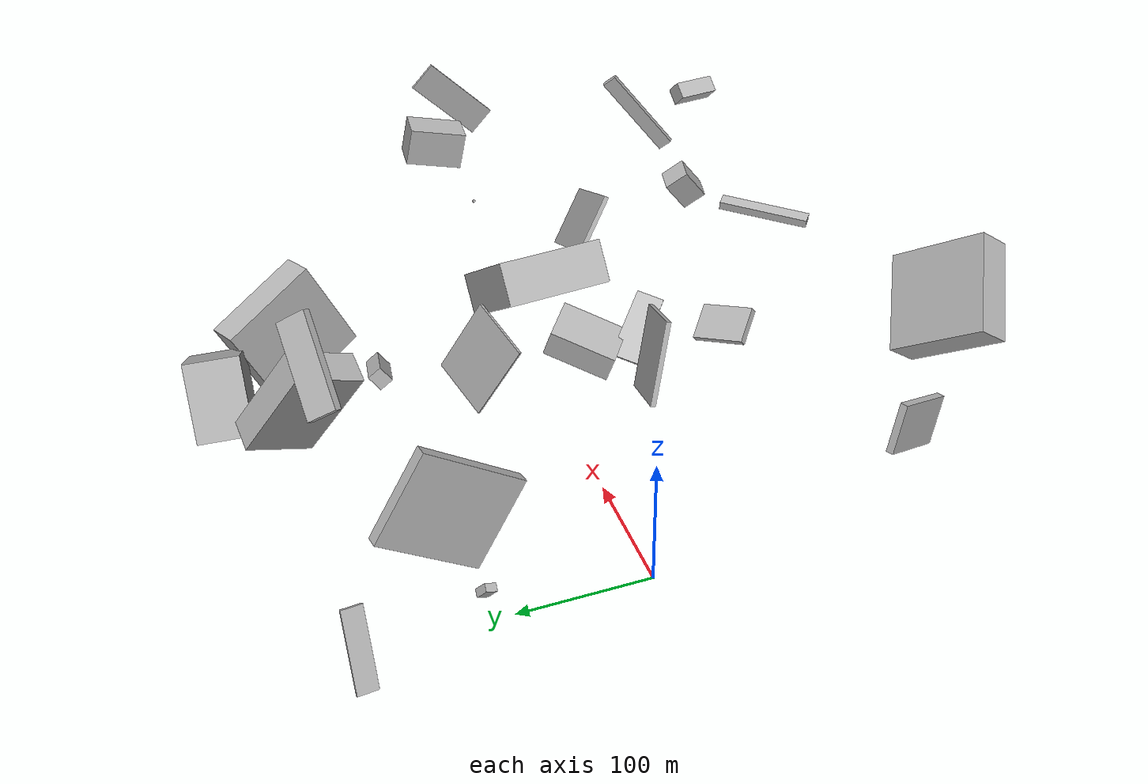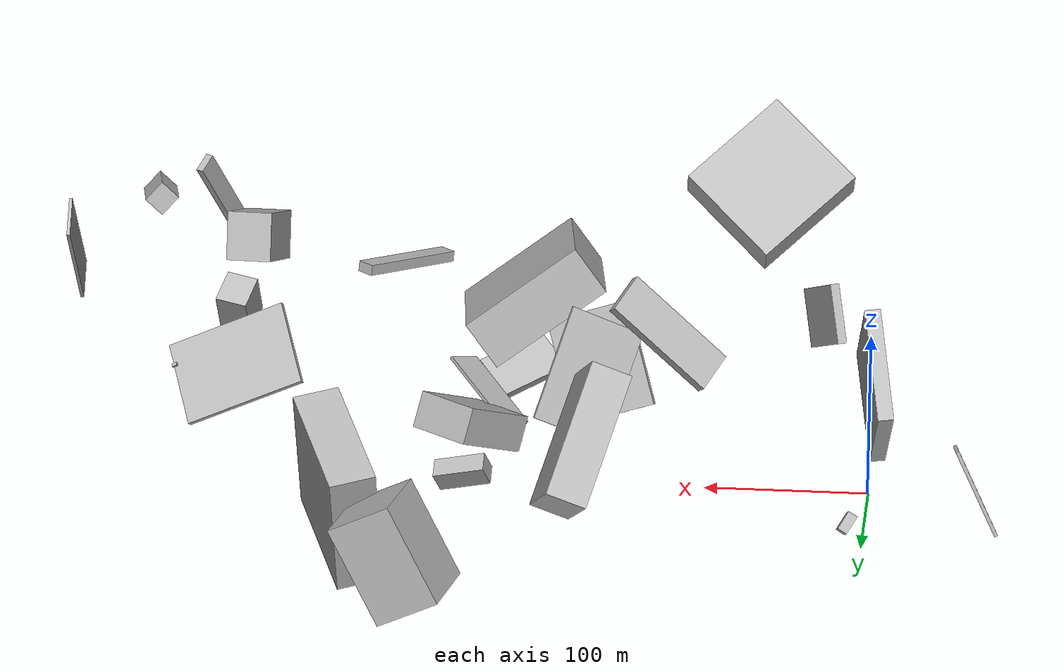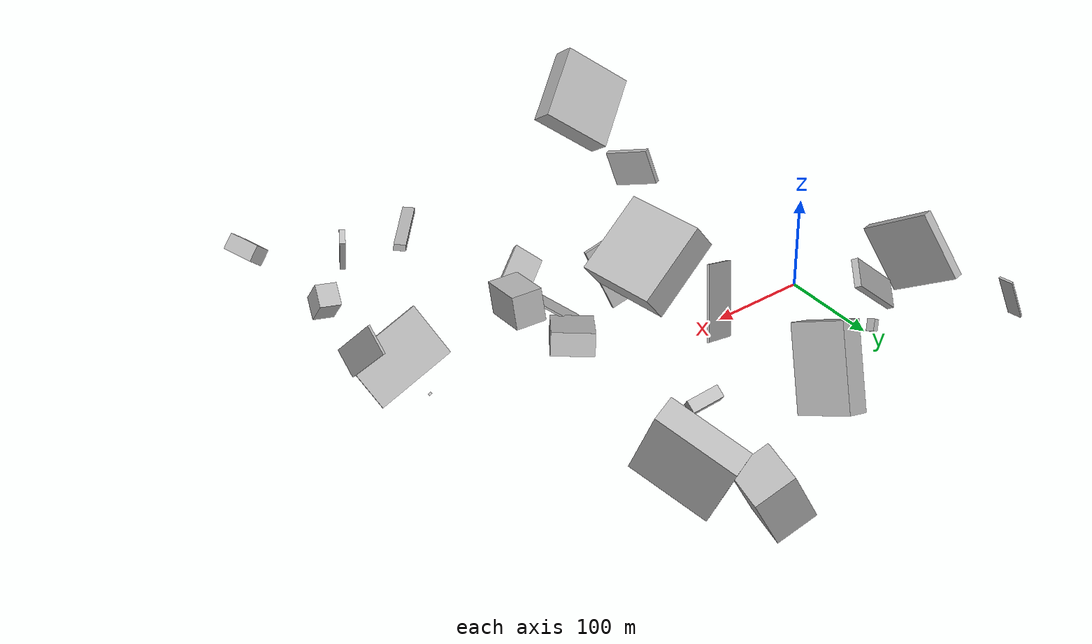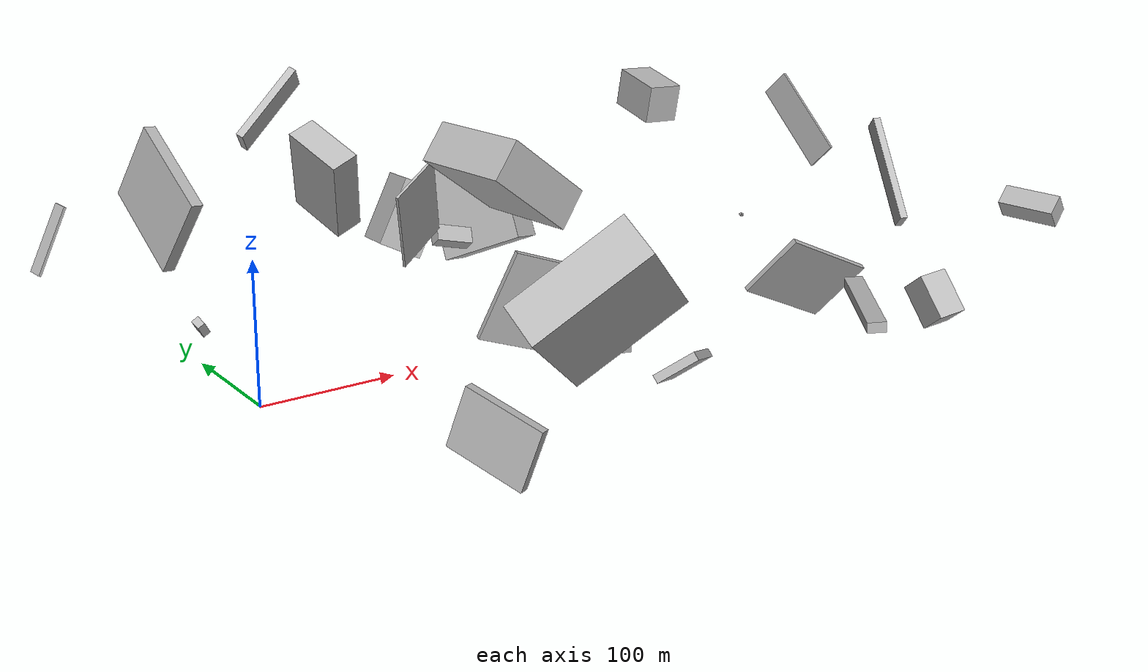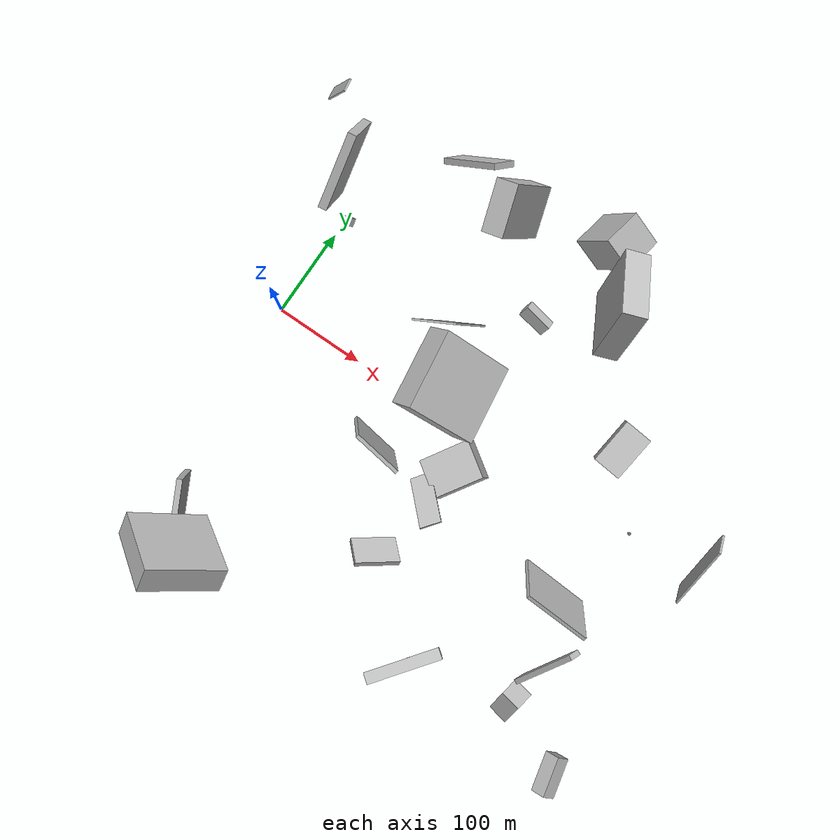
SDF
<sdf version="1.6">
 <world name="default">
  <scene>
   <sky><clouds><speed>12</speed></clouds></sky>
   <ambient>0.4 0.4 0.4 1</ambient>
   <background>0.7 0.7 0.7 1</background>
   <shadows>1</shadows>
  </scene>
  <gravity>0 0 -9.8066</gravity>
  <magnetic_field>6e-06 2.3e-05 -4.2e-05</magnetic_field>
  <physics default="0" name="default_physics" type="ode">
   <ode>
    <solver>
     <type>quick</type>
     <iters>10</iters>
     <sor>1.0</sor>
     <use_dynamic_moi_rescaling>0</use_dynamic_moi_rescaling>
    </solver>
    <constraints>
     <cfm>0</cfm>
     <erp>0.2</erp>
     <contact_max_correcting_vel>100</contact_max_correcting_vel>
     <contact_surface_layer>0.001</contact_surface_layer>
    </constraints>
   </ode>
   <max_step_size>0.004</max_step_size>
   <real_time_factor>1</real_time_factor>
   <real_time_update_rate>250</real_time_update_rate>
  </physics>
  <light name="sun" type="directional">
   <pose>0 0 10 0 0 0</pose>
   <diffuse>0.8 0.8 0.8 1</diffuse>
   <specular>0.2 0.2 0.2 1</specular>
   <attenuation>
    <range>1000</range>
    <constant>0.9</constant>
    <linear>0.01</linear>
    <quadratic>0.001</quadratic>
   </attenuation>
   <direction>-0.5 0.1 -0.9</direction>
  </light>
  <model name="building_1">
   <static>0</static>
   <pose>235.23964842096214 20.82194819237553 103.2047017219129 -0.9524782918289773 -0.026486039411375294 1.7036324238253693</pose>
   <link name="link">
    <gravity>0</gravity>
    <pose>0 0 40.0 0 0 0</pose>
    <collision name="collision"><geometry><box><size>80 32 80</size></box></geometry></collision>
    <visual name="visual">
     <cast_shadows>0</cast_shadows>
     <geometry><box><size>80 32 80</size></box></geometry>
     <material>
      <script>
       <uri>model://HANNAS_wall/materials/scripts</uri>
       <uri>model://HANNAS_wall/materials/textures</uri>
       <name>vrc/HANNAS_wall</name>
      </script>
     </material>
    </visual>
   </link>
  </model>
  <model name="building_2">
   <static>0</static>
   <pose>483.886964312198 -248.84995673003476 113.12028440746765 -1.4904453070580272 0.7961641236755025 0.2801724063317619</pose>
   <link name="link">
    <gravity>0</gravity>
    <pose>0 0 19.0 0 0 0</pose>
    <collision name="collision"><geometry><box><size>16 15 38</size></box></geometry></collision>
    <visual name="visual">
     <cast_shadows>0</cast_shadows>
     <geometry><box><size>16 15 38</size></box></geometry>
     <material>
      <script>
       <uri>model://HANNAS_wall/materials/scripts</uri>
       <uri>model://HANNAS_wall/materials/textures</uri>
       <name>vrc/HANNAS_wall</name>
      </script>
     </material>
    </visual>
   </link>
  </model>
  <model name="building_3">
   <static>0</static>
   <pose>365.5596434854917 51.87610842841268 151.6974452510726 0.21430864675087197 0.010999509659303365 -0.10493074831250365</pose>
   <link name="link">
    <gravity>0</gravity>
    <pose>0 0 14.5 0 0 0</pose>
    <collision name="collision"><geometry><box><size>27 44 29</size></box></geometry></collision>
    <visual name="visual">
     <cast_shadows>0</cast_shadows>
     <geometry><box><size>27 44 29</size></box></geometry>
     <material>
      <script>
       <uri>model://HANNAS_wall/materials/scripts</uri>
       <uri>model://HANNAS_wall/materials/textures</uri>
       <name>vrc/HANNAS_wall</name>
      </script>
     </material>
    </visual>
   </link>
  </model>
  <model name="building_4">
   <static>0</static>
   <pose>488.23084929335204 -8.391974068427652 149.21707968383095 2.3414672389962403 -0.01143662068264524 -3.058246632697735</pose>
   <link name="link">
    <gravity>0</gravity>
    <pose>0 0 13.0 0 0 0</pose>
    <collision name="collision"><geometry><box><size>2 76 26</size></box></geometry></collision>
    <visual name="visual">
     <cast_shadows>0</cast_shadows>
     <geometry><box><size>2 76 26</size></box></geometry>
     <material>
      <script>
       <uri>model://HANNAS_wall/materials/scripts</uri>
       <uri>model://HANNAS_wall/materials/textures</uri>
       <name>vrc/HANNAS_wall</name>
      </script>
     </material>
    </visual>
   </link>
  </model>
  <model name="building_5">
   <static>0</static>
   <pose>426.3080718156157 1.42758083488277 68.29221395530334 2.209118921637051 0.6918436585693996 2.02317017112855</pose>
   <link name="link">
    <gravity>0</gravity>
    <pose>0 0 1.5 0 0 0</pose>
    <collision name="collision"><geometry><box><size>2 2 3</size></box></geometry></collision>
    <visual name="visual">
     <cast_shadows>0</cast_shadows>
     <geometry><box><size>2 2 3</size></box></geometry>
     <material>
      <script>
       <uri>model://HANNAS_wall/materials/scripts</uri>
       <uri>model://HANNAS_wall/materials/textures</uri>
       <name>vrc/HANNAS_wall</name>
      </script>
     </material>
    </visual>
   </link>
  </model>
  <model name="building_6">
   <static>0</static>
   <pose>238.22375328539266 256.04236588549463 49.090786099963836 2.027785942264363 0.08540359595881124 1.3917862674086494</pose>
   <link name="link">
    <gravity>0</gravity>
    <pose>0 0 20.0 0 0 0</pose>
    <collision name="collision"><geometry><box><size>43 62 40</size></box></geometry></collision>
    <visual name="visual">
     <cast_shadows>0</cast_shadows>
     <geometry><box><size>43 62 40</size></box></geometry>
     <material>
      <script>
       <uri>model://HANNAS_wall/materials/scripts</uri>
       <uri>model://HANNAS_wall/materials/textures</uri>
       <name>vrc/HANNAS_wall</name>
      </script>
     </material>
    </visual>
   </link>
  </model>
  <model name="building_7">
   <static>0</static>
   <pose>148.2934812535727 228.7641384522192 106.31781913193907 -2.422140564726641 -0.9759556332665092 -2.080935041594974</pose>
   <link name="link">
    <gravity>0</gravity>
    <pose>0 0 27.0 0 0 0</pose>
    <collision name="collision"><geometry><box><size>80 24 54</size></box></geometry></collision>
    <visual name="visual">
     <cast_shadows>0</cast_shadows>
     <geometry><box><size>80 24 54</size></box></geometry>
     <material>
      <script>
       <uri>model://HANNAS_wall/materials/scripts</uri>
       <uri>model://HANNAS_wall/materials/textures</uri>
       <name>vrc/HANNAS_wall</name>
      </script>
     </material>
    </visual>
   </link>
  </model>
  <model name="building_8">
   <static>0</static>
   <pose>411.45674137994695 -174.96613313369258 101.1261966105227 0.08247614079573368 -0.6858429695261489 -2.0932474736588693</pose>
   <link name="link">
    <gravity>0</gravity>
    <pose>0 0 40.0 0 0 0</pose>
    <collision name="collision"><geometry><box><size>13 5 80</size></box></geometry></collision>
    <visual name="visual">
     <cast_shadows>0</cast_shadows>
     <geometry><box><size>13 5 80</size></box></geometry>
     <material>
      <script>
       <uri>model://HANNAS_wall/materials/scripts</uri>
       <uri>model://HANNAS_wall/materials/textures</uri>
       <name>vrc/HANNAS_wall</name>
      </script>
     </material>
    </visual>
   </link>
  </model>
  <model name="building_9">
   <static>0</static>
   <pose>236.04783209574384 -91.7576263846708 29.46333758128797 1.157640814236909 -0.998713994452255 2.8339021532230824</pose>
   <link name="link">
    <gravity>0</gravity>
    <pose>0 0 11.5 0 0 0</pose>
    <collision name="collision"><geometry><box><size>2 61 23</size></box></geometry></collision>
    <visual name="visual">
     <cast_shadows>0</cast_shadows>
     <geometry><box><size>2 61 23</size></box></geometry>
     <material>
      <script>
       <uri>model://HANNAS_wall/materials/scripts</uri>
       <uri>model://HANNAS_wall/materials/textures</uri>
       <name>vrc/HANNAS_wall</name>
      </script>
     </material>
    </visual>
   </link>
  </model>
  <model name="building_10">
   <static>0</static>
   <pose>-12.664627639904582 159.91443029175193 86.46385373311921 0.6125574656723329 0.08176436940539351 0.15547906432399078</pose>
   <link name="link">
    <gravity>0</gravity>
    <pose>0 0 33.0 0 0 0</pose>
    <collision name="collision"><geometry><box><size>9 80 66</size></box></geometry></collision>
    <visual name="visual">
     <cast_shadows>0</cast_shadows>
     <geometry><box><size>9 80 66</size></box></geometry>
     <material>
      <script>
       <uri>model://HANNAS_wall/materials/scripts</uri>
       <uri>model://HANNAS_wall/materials/textures</uri>
       <name>vrc/HANNAS_wall</name>
      </script>
     </material>
    </visual>
   </link>
  </model>
  <model name="building_11">
   <static>0</static>
   <pose>4.772578688367425 114.39408671159876 25.739782642598016 2.5391351577564727 -0.39537734686152165 1.756636352583273</pose>
   <link name="link">
    <gravity>0</gravity>
    <pose>0 0 6.0 0 0 0</pose>
    <collision name="collision"><geometry><box><size>9 6 12</size></box></geometry></collision>
    <visual name="visual">
     <cast_shadows>0</cast_shadows>
     <geometry><box><size>9 6 12</size></box></geometry>
     <material>
      <script>
       <uri>model://HANNAS_wall/materials/scripts</uri>
       <uri>model://HANNAS_wall/materials/textures</uri>
       <name>vrc/HANNAS_wall</name>
      </script>
     </material>
    </visual>
   </link>
  </model>
  <model name="building_12">
   <static>0</static>
   <pose>195.53611202510433 -69.25163995507974 48.97551408540291 0.6144619188112261 -1.1609814481184444 -0.7842465603424801</pose>
   <link name="link">
    <gravity>0</gravity>
    <pose>0 0 27.0 0 0 0</pose>
    <collision name="collision"><geometry><box><size>67 4 54</size></box></geometry></collision>
    <visual name="visual">
     <cast_shadows>0</cast_shadows>
     <geometry><box><size>67 4 54</size></box></geometry>
     <material>
      <script>
       <uri>model://HANNAS_wall/materials/scripts</uri>
       <uri>model://HANNAS_wall/materials/textures</uri>
       <name>vrc/HANNAS_wall</name>
      </script>
     </material>
    </visual>
   </link>
  </model>
  <model name="building_13">
   <static>0</static>
   <pose>47.764417632296144 -243.5885666503589 38.7710989770485 1.242308065314112 -0.03427062032215163 -2.7179610639272944</pose>
   <link name="link">
    <gravity>0</gravity>
    <pose>0 0 25.5 0 0 0</pose>
    <collision name="collision"><geometry><box><size>6 39 51</size></box></geometry></collision>
    <visual name="visual">
     <cast_shadows>0</cast_shadows>
     <geometry><box><size>6 39 51</size></box></geometry>
     <material>
      <script>
       <uri>model://HANNAS_wall/materials/scripts</uri>
       <uri>model://HANNAS_wall/materials/textures</uri>
       <name>vrc/HANNAS_wall</name>
      </script>
     </material>
    </visual>
   </link>
  </model>
  <model name="building_14">
   <static>0</static>
   <pose>247.81597420600883 -141.66868477331474 20.197006660591605 -1.1108398096736067 -0.8991440707390478 1.827451639221202</pose>
   <link name="link">
    <gravity>0</gravity>
    <pose>0 0 23.5 0 0 0</pose>
    <collision name="collision"><geometry><box><size>6 31 47</size></box></geometry></collision>
    <visual name="visual">
     <cast_shadows>0</cast_shadows>
     <geometry><box><size>6 31 47</size></box></geometry>
     <material>
      <script>
       <uri>model://HANNAS_wall/materials/scripts</uri>
       <uri>model://HANNAS_wall/materials/textures</uri>
       <name>vrc/HANNAS_wall</name>
      </script>
     </material>
    </visual>
   </link>
  </model>
  <model name="building_15">
   <static>0</static>
   <pose>292.4255102782307 -259.9855672433211 69.9686303398541 0.8334071442903906 -1.4553989611992322 -3.0524146793121827</pose>
   <link name="link">
    <gravity>0</gravity>
    <pose>0 0 38.5 0 0 0</pose>
    <collision name="collision"><geometry><box><size>7 12 77</size></box></geometry></collision>
    <visual name="visual">
     <cast_shadows>0</cast_shadows>
     <geometry><box><size>7 12 77</size></box></geometry>
     <material>
      <script>
       <uri>model://HANNAS_wall/materials/scripts</uri>
       <uri>model://HANNAS_wall/materials/textures</uri>
       <name>vrc/HANNAS_wall</name>
      </script>
     </material>
    </visual>
   </link>
  </model>
  <model name="building_16">
   <static>0</static>
   <pose>423.27878903844527 -209.02247634095394 36.08254662667671 0.19145433772314754 -0.6293687957145861 -1.864096083867101</pose>
   <link name="link">
    <gravity>0</gravity>
    <pose>0 0 16.0 0 0 0</pose>
    <collision name="collision"><geometry><box><size>23 21 32</size></box></geometry></collision>
    <visual name="visual">
     <cast_shadows>0</cast_shadows>
     <geometry><box><size>23 21 32</size></box></geometry>
     <material>
      <script>
       <uri>model://HANNAS_wall/materials/scripts</uri>
       <uri>model://HANNAS_wall/materials/textures</uri>
       <name>vrc/HANNAS_wall</name>
      </script>
     </material>
    </visual>
   </link>
  </model>
  <model name="building_17">
   <static>0</static>
   <pose>144.40991114940647 63.73593878494638 81.67425828402435 -0.4857569785667577 -1.0651106107697559 -2.2118166079675263</pose>
   <link name="link">
    <gravity>0</gravity>
    <pose>0 0 24.0 0 0 0</pose>
    <collision name="collision"><geometry><box><size>70 2 48</size></box></geometry></collision>
    <visual name="visual">
     <cast_shadows>0</cast_shadows>
     <geometry><box><size>70 2 48</size></box></geometry>
     <material>
      <script>
       <uri>model://HANNAS_wall/materials/scripts</uri>
       <uri>model://HANNAS_wall/materials/textures</uri>
       <name>vrc/HANNAS_wall</name>
      </script>
     </material>
    </visual>
   </link>
  </model>
  <model name="building_18">
   <static>0</static>
   <pose>-66.41495268237837 207.10020368534308 76.23319194128231 1.5151037441165067 -0.4339726690036879 -2.981949707398955</pose>
   <link name="link">
    <gravity>0</gravity>
    <pose>0 0 7.0 0 0 0</pose>
    <collision name="collision"><geometry><box><size>2 54 14</size></box></geometry></collision>
    <visual name="visual">
     <cast_shadows>0</cast_shadows>
     <geometry><box><size>2 54 14</size></box></geometry>
     <material>
      <script>
       <uri>model://HANNAS_wall/materials/scripts</uri>
       <uri>model://HANNAS_wall/materials/textures</uri>
       <name>vrc/HANNAS_wall</name>
      </script>
     </material>
    </visual>
   </link>
  </model>
  <model name="building_19">
   <static>0</static>
   <pose>369.8260407028481 -90.87483142752609 56.24206564396717 2.0477560221671047 -0.533112816765801 1.2851889056889245</pose>
   <link name="link">
    <gravity>0</gravity>
    <pose>0 0 40.0 0 0 0</pose>
    <collision name="collision"><geometry><box><size>4 55 80</size></box></geometry></collision>
    <visual name="visual">
     <cast_shadows>0</cast_shadows>
     <geometry><box><size>4 55 80</size></box></geometry>
     <material>
      <script>
       <uri>model://HANNAS_wall/materials/scripts</uri>
       <uri>model://HANNAS_wall/materials/textures</uri>
       <name>vrc/HANNAS_wall</name>
      </script>
     </material>
    </visual>
   </link>
  </model>
  <model name="building_20">
   <static>0</static>
   <pose>309.16816229673384 197.98696361131505 54.95970905056795 -1.2087024789820595 -1.145142325139183 1.6154713517251584</pose>
   <link name="link">
    <gravity>0</gravity>
    <pose>0 0 13.5 0 0 0</pose>
    <collision name="collision"><geometry><box><size>80 80 27</size></box></geometry></collision>
    <visual name="visual">
     <cast_shadows>0</cast_shadows>
     <geometry><box><size>80 80 27</size></box></geometry>
     <material>
      <script>
       <uri>model://HANNAS_wall/materials/scripts</uri>
       <uri>model://HANNAS_wall/materials/textures</uri>
       <name>vrc/HANNAS_wall</name>
      </script>
     </material>
    </visual>
   </link>
  </model>
  <model name="building_21">
   <static>0</static>
   <pose>246.3831696626703 -42.33438434983019 35.38742785641858 -2.8093582621990913 -0.0643100212260765 -0.6046764430743296</pose>
   <link name="link">
    <gravity>0</gravity>
    <pose>0 0 11.5 0 0 0</pose>
    <collision name="collision"><geometry><box><size>42 56 23</size></box></geometry></collision>
    <visual name="visual">
     <cast_shadows>0</cast_shadows>
     <geometry><box><size>42 56 23</size></box></geometry>
     <material>
      <script>
       <uri>model://HANNAS_wall/materials/scripts</uri>
       <uri>model://HANNAS_wall/materials/textures</uri>
       <name>vrc/HANNAS_wall</name>
      </script>
     </material>
    </visual>
   </link>
  </model>
  <model name="building_22">
   <static>0</static>
   <pose>76.12604147981827 -248.80083810525812 132.8316761909209 2.3757666469491436 -0.6401883155233655 -0.4655228393466518</pose>
   <link name="link">
    <gravity>0</gravity>
    <pose>0 0 13.5 0 0 0</pose>
    <collision name="collision"><geometry><box><size>75 80 27</size></box></geometry></collision>
    <visual name="visual">
     <cast_shadows>0</cast_shadows>
     <geometry><box><size>75 80 27</size></box></geometry>
     <material>
      <script>
       <uri>model://HANNAS_wall/materials/scripts</uri>
       <uri>model://HANNAS_wall/materials/textures</uri>
       <name>vrc/HANNAS_wall</name>
      </script>
     </material>
    </visual>
   </link>
  </model>
  <model name="building_23">
   <static>0</static>
   <pose>232.13203550924965 129.64229941430634 53.71357283408176 -2.2181927909014694 0.21417663455813452 -0.14576809353992679</pose>
   <link name="link">
    <gravity>0</gravity>
    <pose>0 0 6.0 0 0 0</pose>
    <collision name="collision"><geometry><box><size>31 14 12</size></box></geometry></collision>
    <visual name="visual">
     <cast_shadows>0</cast_shadows>
     <geometry><box><size>31 14 12</size></box></geometry>
     <material>
      <script>
       <uri>model://HANNAS_wall/materials/scripts</uri>
       <uri>model://HANNAS_wall/materials/textures</uri>
       <name>vrc/HANNAS_wall</name>
      </script>
     </material>
    </visual>
   </link>
  </model>
  <model name="building_24">
   <static>0</static>
   <pose>81.83790142104293 198.52657622917113 135.0194409726559 0.6887926934924018 -0.48282964749823665 2.207455641801788</pose>
   <link name="link">
    <gravity>0</gravity>
    <pose>0 0 34.5 0 0 0</pose>
    <collision name="collision"><geometry><box><size>6 25 69</size></box></geometry></collision>
    <visual name="visual">
     <cast_shadows>0</cast_shadows>
     <geometry><box><size>6 25 69</size></box></geometry>
     <material>
      <script>
       <uri>model://HANNAS_wall/materials/scripts</uri>
       <uri>model://HANNAS_wall/materials/textures</uri>
       <name>vrc/HANNAS_wall</name>
      </script>
     </material>
    </visual>
   </link>
  </model>
 </world>
</sdf>
